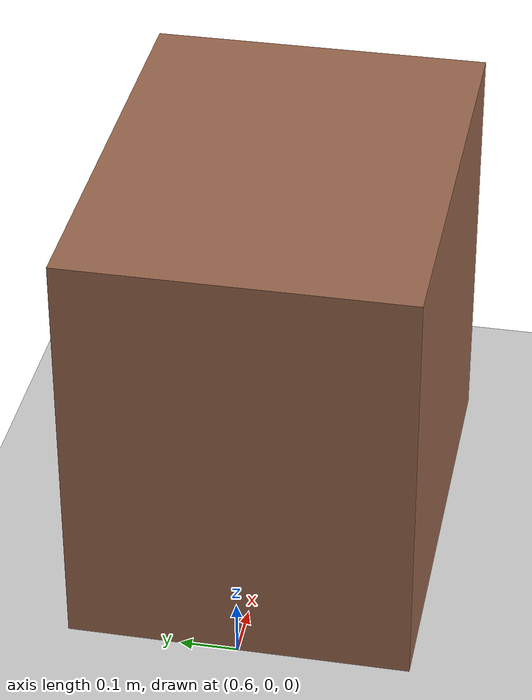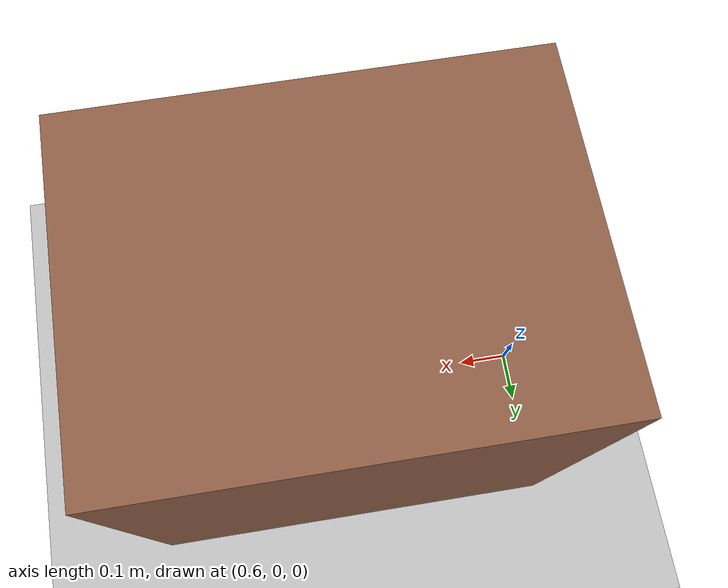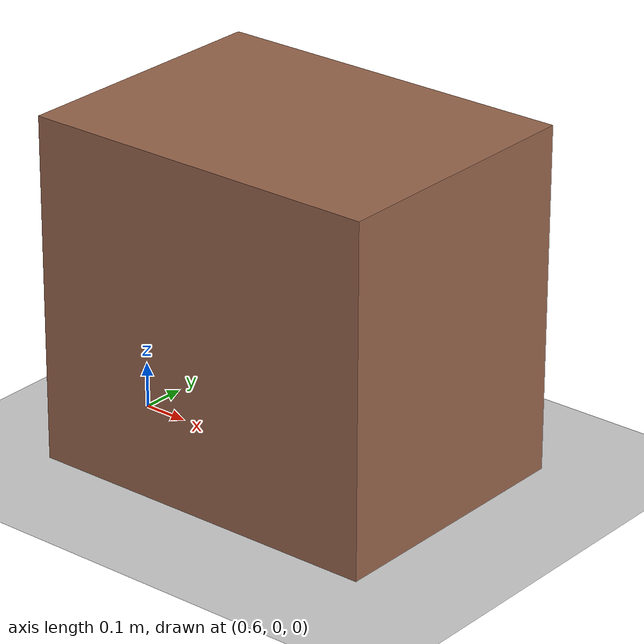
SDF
<?xml version="1.0" ?>
<sdf version="1.6">

  <world name="walls_blocks">

    <!-- Light -->
    <include>
      <uri>model://sun</uri>
    </include>

    <!-- Ground -->
    <include>
      <uri>model://ground_plane</uri>
    </include>

    <!-- ================= TABLE (BOX) ================= -->
    <model name="table_box">
      <static>true</static>

      <!-- Table is 1.0m in front of TIAGo -->
      <!-- Table height = 0.75m → z = 0.375 -->
      <pose>1.0 0.0 0.375 0 0 0</pose>

      <link name="link">

        <collision name="collision">
          <geometry>
            <box>
              <size>0.8 0.6 0.75</size>
            </box>
          </geometry>
        </collision>

        <visual name="visual">
          <geometry>
            <box>
              <size>0.8 0.6 0.75</size>
            </box>
          </geometry>
          <material>
            <ambient>0.6 0.4 0.3 1</ambient>
            <diffuse>0.6 0.4 0.3 1</diffuse>
          </material>
        </visual>

      </link>
    </model>

  </world>
</sdf>
